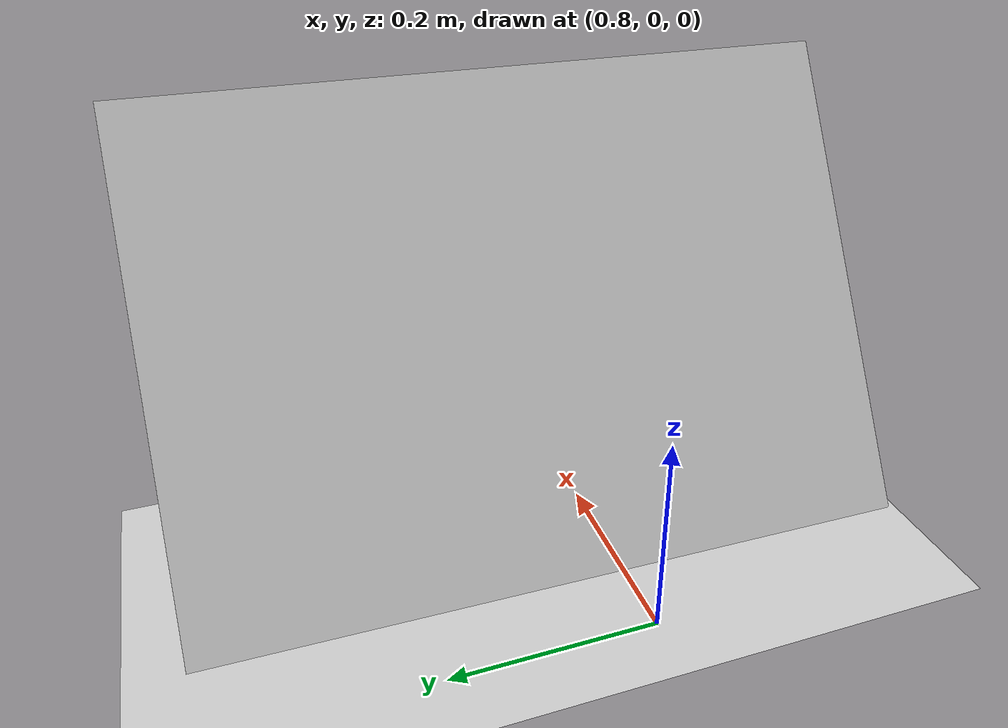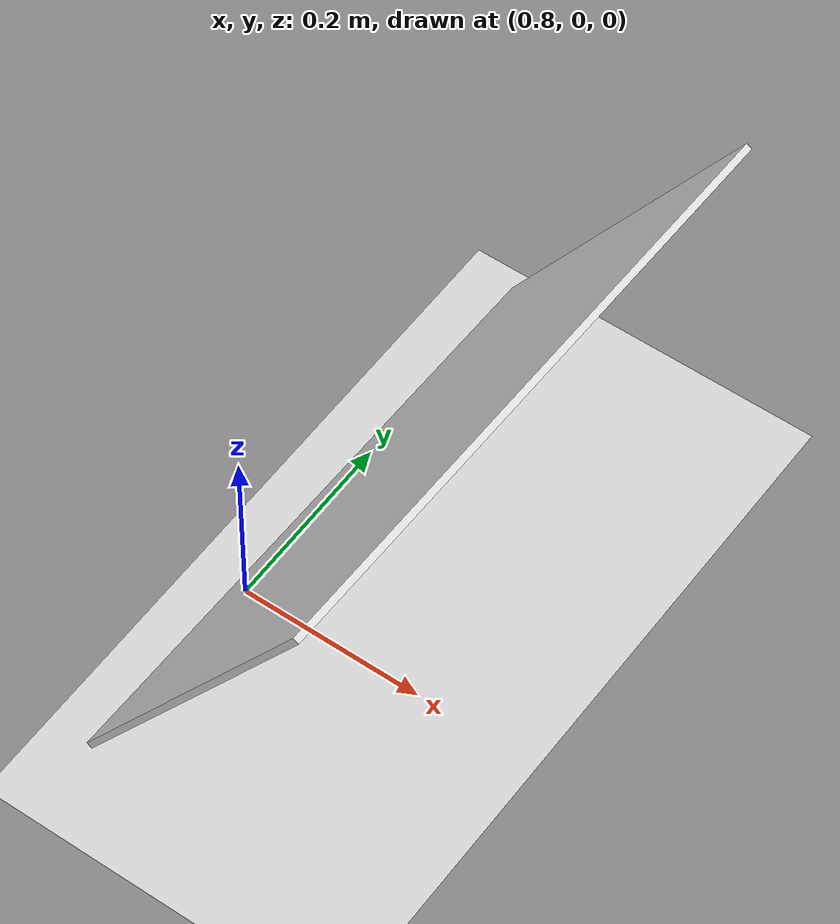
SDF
<sdf version="1.6">
 <world name="default">
  <light name="sun" type="directional">
   <pose>0 0 10 0 -0 0</pose>
   <diffuse>0.8 0.8 0.8 1</diffuse>
   <specular>0.2 0.2 0.2 1</specular>
   <attenuation>
    <range>1000</range>
    <constant>0.9</constant>
    <linear>0.01</linear>
    <quadratic>0.001</quadratic>
   </attenuation>
   <direction>-0.5 0.1 -0.9</direction>
  </light>
  <model name="ground_plane">
   <static>1</static>
   <link name="link">
    <collision name="collision">
     <geometry><plane><normal>0 0 1</normal><size>100 100</size></plane></geometry>
     <surface><friction><ode><mu>100</mu><mu2>50</mu2></ode></friction></surface>
    </collision>
    <visual name="visual">
     <cast_shadows>0</cast_shadows>
     <geometry><plane><normal>0 0 1</normal><size>100 100</size></plane></geometry>
     <material>
      <script><uri>file://media/materials/scripts/gazebo.material</uri><name>Gazebo/Grey</name></script>
     </material>
    </visual>
   </link>
  </model>
  <gravity>0 0 -9.8</gravity>
  <magnetic_field>6e-06 2.3e-05 -4.2e-05</magnetic_field>
  <atmosphere type="adiabatic"/>
  <physics name="default_physics" default="0" type="ode">
   <max_step_size>0.001</max_step_size>
   <real_time_factor>1</real_time_factor>
   <real_time_update_rate>1000</real_time_update_rate>
  </physics>
  <scene><ambient>0.4 0.4 0.4 1</ambient><background>0.7 0.7 0.7 1</background><shadows>1</shadows></scene>
  <spherical_coordinates>
   <surface_model>EARTH_WGS84</surface_model>
   <latitude_deg>0</latitude_deg>
   <longitude_deg>0</longitude_deg>
   <elevation>0</elevation>
   <heading_deg>0</heading_deg>
  </spherical_coordinates>
  <model name="check_board_precise">
   <static>1</static>
   <pose>1.06339 -0.252487 0.448125 -1.00771 0 1.55509</pose>
   <link name="board">
    <collision name="collision">
     <geometry>
      <mesh><uri>model://model_/check_board_2times/meshes/check_board_2times_collision.dae</uri></mesh>
     </geometry>
    </collision>
    <visual name="visual">
     <geometry><mesh><uri>model://model_/check_board_2times/meshes/check_board_2times.dae</uri></mesh></geometry>
     <cast_shadows>0</cast_shadows>
    </visual>
   </link>
  </model>
  <light name="user_point_light_0" type="point">
   <pose>-0.080401 0.091987 1 0 -0 0</pose>
   <diffuse>0.5 0.5 0.5 1</diffuse>
   <specular>0.1 0.1 0.1 1</specular>
   <attenuation>
    <range>20</range>
    <constant>0.5</constant>
    <linear>0.01</linear>
    <quadratic>0.001</quadratic>
   </attenuation>
   <cast_shadows>0</cast_shadows>
   <direction>0 0 -1</direction>
  </light>
 </world>
</sdf>
